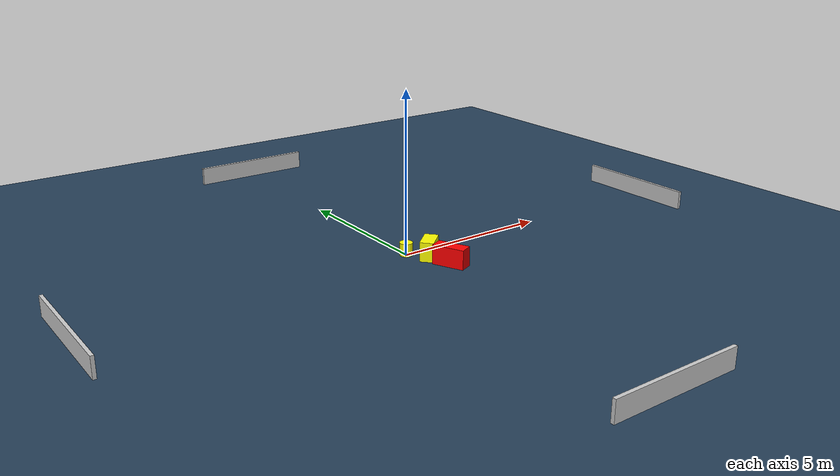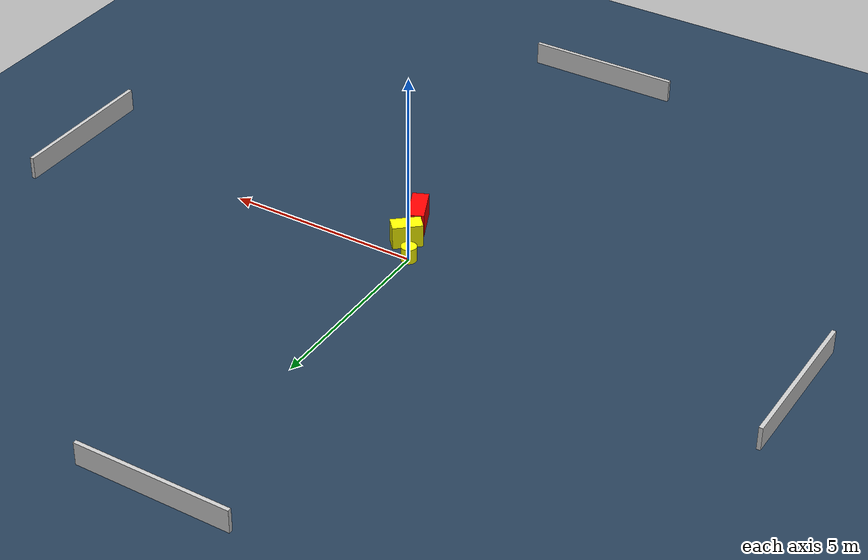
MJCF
<?xml version="1.0" ?>
<mujoco model="generated_environment">
  <option timestep="0.01" integrator="RK4" cone="elliptic"/>
  <default>
    <geom density="1"/>
  </default>
  <asset>
    <texture builtin="gradient" height="3072" name="skybox" rgb1="0.3 0.5 0.7" rgb2="0 0 0" type="skybox" width="512"/>
    <texture builtin="checker" height="300" name="groundplane" rgb1="0.2 0.3 0.4" rgb2="0.1 0.2 0.3" type="2d" width="300"/>
    <material name="groundplane" reflectance="0.2" texrepeat="5 5" texture="groundplane"/>
  </asset>
  <worldbody>
    <light dir="0 0 -1" directional="true" pos="0 0 1.5"/>
    <geom condim="3" friction="0.5 0.005 0.001" material="groundplane" name="floor" pos="0 0 0" size="0 0 0.05" type="plane"/>
    <body name="walls">
      <geom name="wall_1" condim="4" pos="-10.0 0.0 0.3" rgba="0.800000011920929 0.800000011920929 0.800000011920929 1.0" size="0.05 2.0 0.3" type="box"/>
      <geom name="wall_2" condim="4" pos="10.0 0.0 0.3" rgba="0.800000011920929 0.800000011920929 0.800000011920929 1.0" size="0.05 2.0 0.3" type="box"/>
      <geom name="wall_3" condim="4" pos="0.0 -10.0 0.3" rgba="0.800000011920929 0.800000011920929 0.800000011920929 1.0" size="2.0 0.05 0.3" type="box"/>
      <geom name="wall_4" condim="4" pos="0.0 10.0 0.3" rgba="0.800000011920929 0.800000011920929 0.800000011920929 1.0" size="2.0 0.05 0.3" type="box"/>
    </body>
    <body name="robot">
      <joint name="joint_x" type="slide" pos="0 0 0" axis="1 0 0"/>
      <joint name="joint_y" type="slide" pos="0 0 0" axis="0 1 0"/>
      <geom name="robot" type="cylinder" pos="0.0 0.0 0.2" size="0.2 0.2 0.0" mass="5.0" friction="1.0 0.005 0.0001" condim="4" rgba="1.0 1.0 0.0 1.0"/>
    </body>
    <body name="obstacle_1_movable">
      <geom name="obstacle_1_movable" condim="4" pos="0.4225909950608415 -0.5701212014803207 0.3" euler="0 0 131.47050570619592" friction="0.0 0.005 0.001" rgba="1.0 1.0 0.0 1.0" size="0.21008567484606783 0.38233308774494507 0.3" type="box" mass="0.1"/>
      <joint type="free"/>
    </body>
    <body name="obstacle_2_static">
      <geom name="obstacle_2_static" condim="4" pos="0.5968204207203291 -1.3880382094942725 0.3" euler="0 0 114.07100043256544" friction="0.0 0.005 0.001" rgba="1.0 0.0 0.0 1.0" size="0.4989722540062234 0.2090750187350937 0.3" type="box"/>
    </body>
  </worldbody>
  <actuator>
    <motor name="actuator_x" joint="joint_x" gear="1" ctrlrange="-1 1"/>
    <motor name="actuator_y" joint="joint_y" gear="1" ctrlrange="-1 1"/>
  </actuator>
</mujoco>
